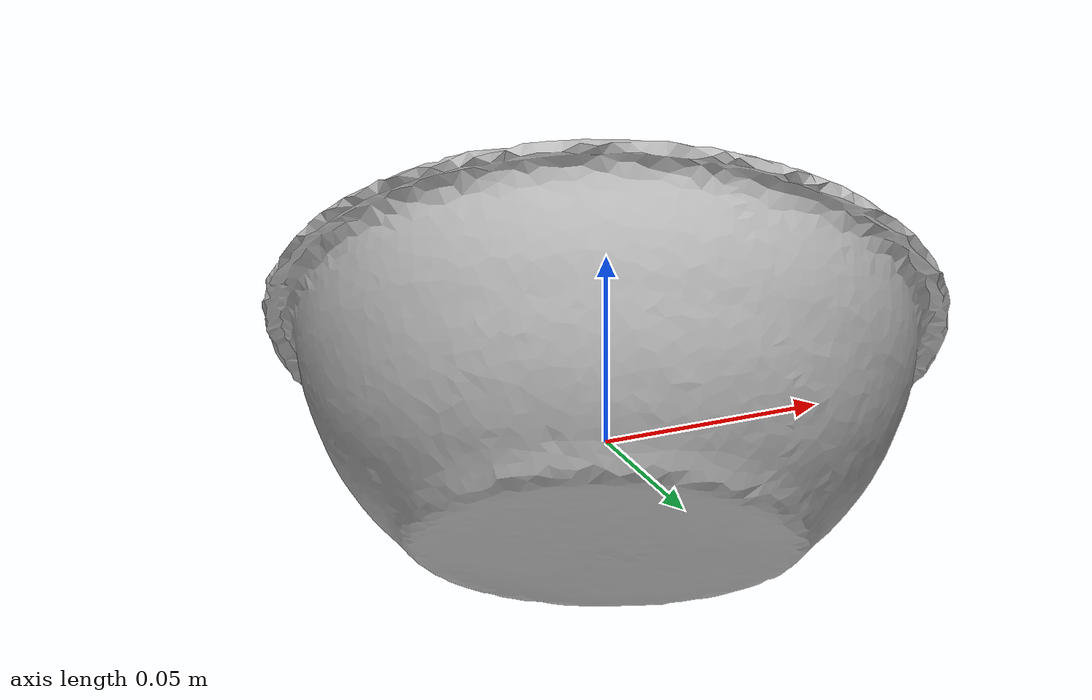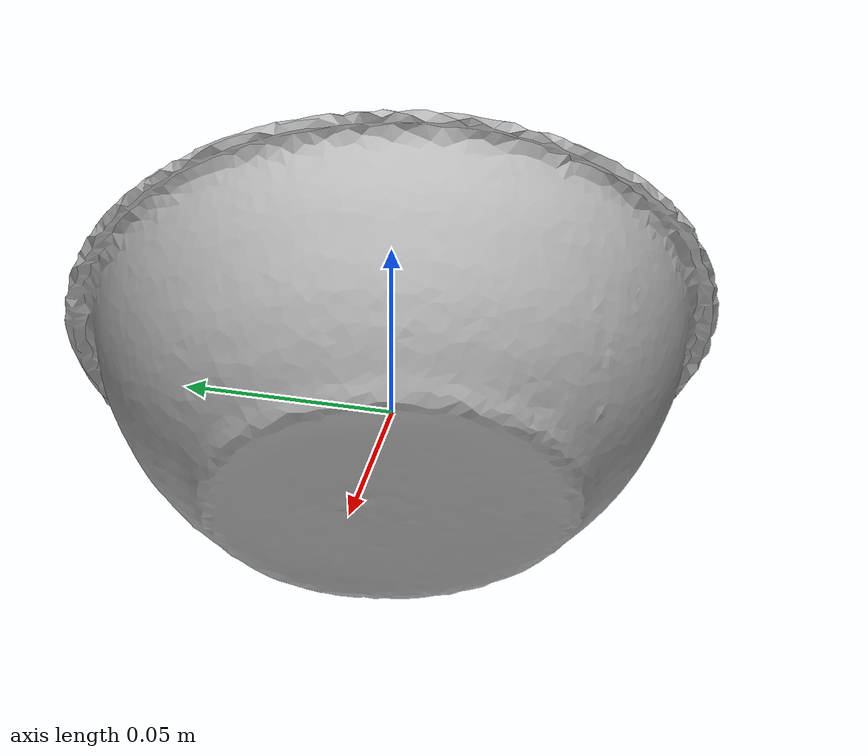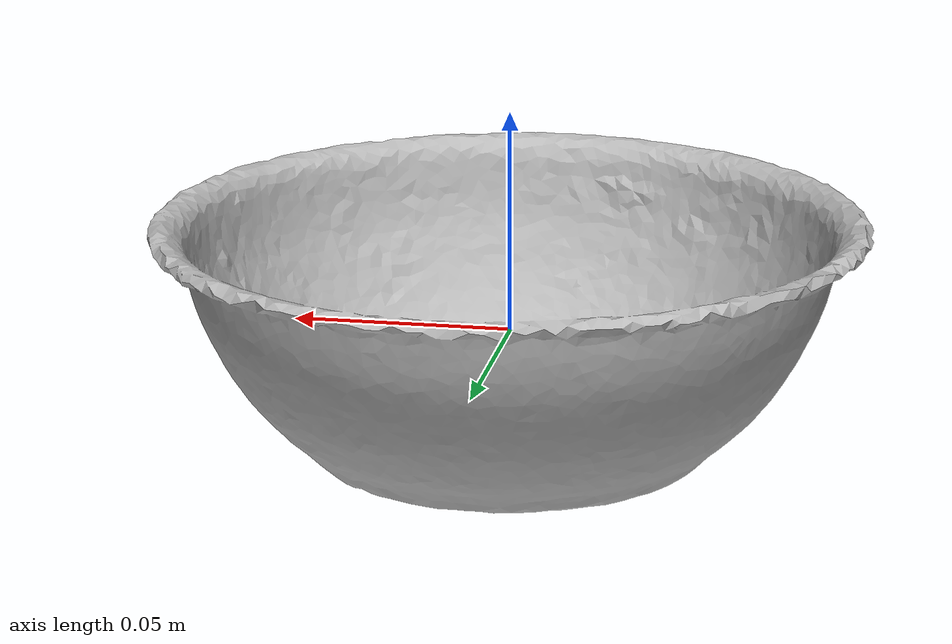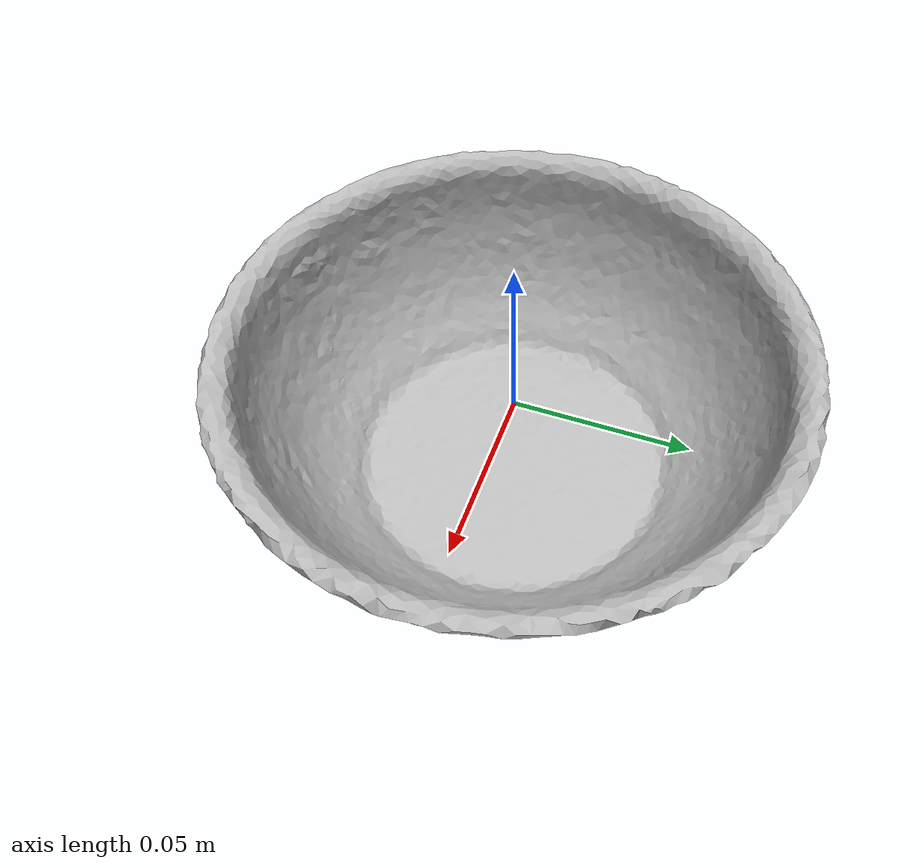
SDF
<?xml version="1.0" ?>
<sdf version="1.7">
<!--
This SDF file was automatically generated using a template modified
and authored by Jinjian Li. The moment of interia is not supposed to be changed.
-->
    <model name="obj_000013">
      <pose>0.0 0.0 0.0 0.0 0.0 0.0</pose>
      <link name="link">
        <inertial>
          <inertia>
           <ixx>0.00011529349475134284</ixx>
           <ixy>1.8126405291009394e-06</ixy>
           <ixz>-4.7391193758997884e-08</ixz>
           <iyy>0.00011271882343708265</iyy>
           <iyz>1.7067524865494977e-06</iyz>
           <izz>0.00019236113822016326</izz>
          </inertia>
          <mass>0.04934551958326499</mass>
        </inertial>
        <collision name="collision">
          <geometry>
            <mesh>
             <uri>obj_000013.obj</uri>
             <scale>1 1 1</scale>
            </mesh>
          </geometry>
        </collision>

        <visual name="visual">
          <geometry>
            <mesh>
             <uri>obj_000013.obj</uri>
             <scale>1 1 1</scale>
            </mesh>
          </geometry>
        </visual>
      </link>
    </model>
</sdf>
